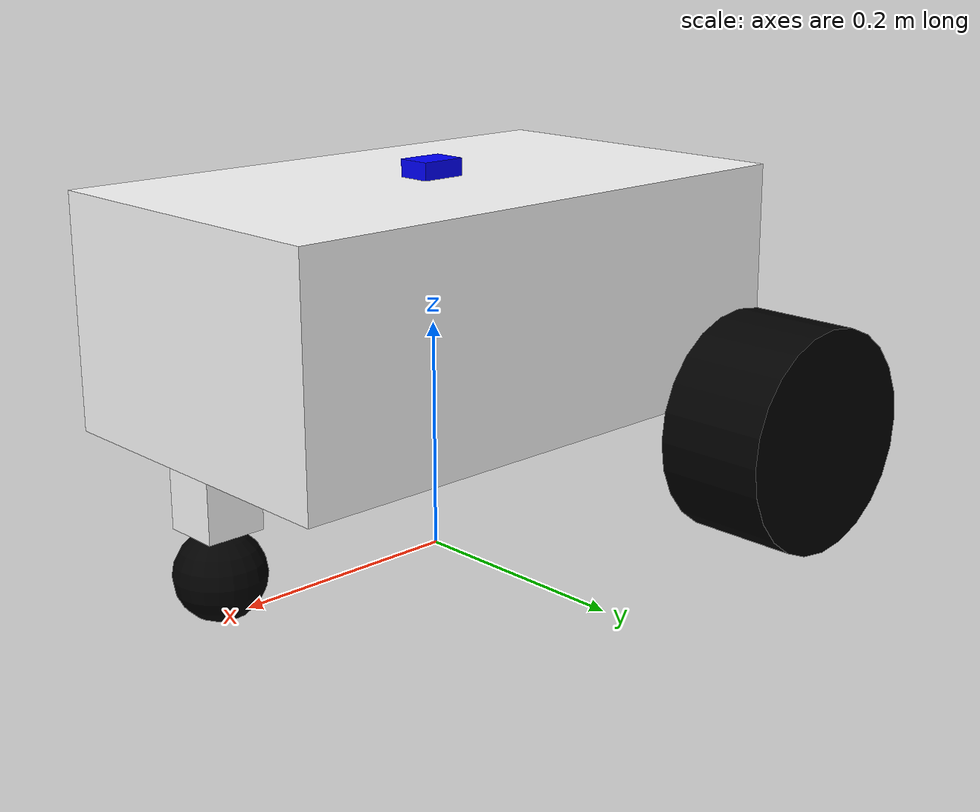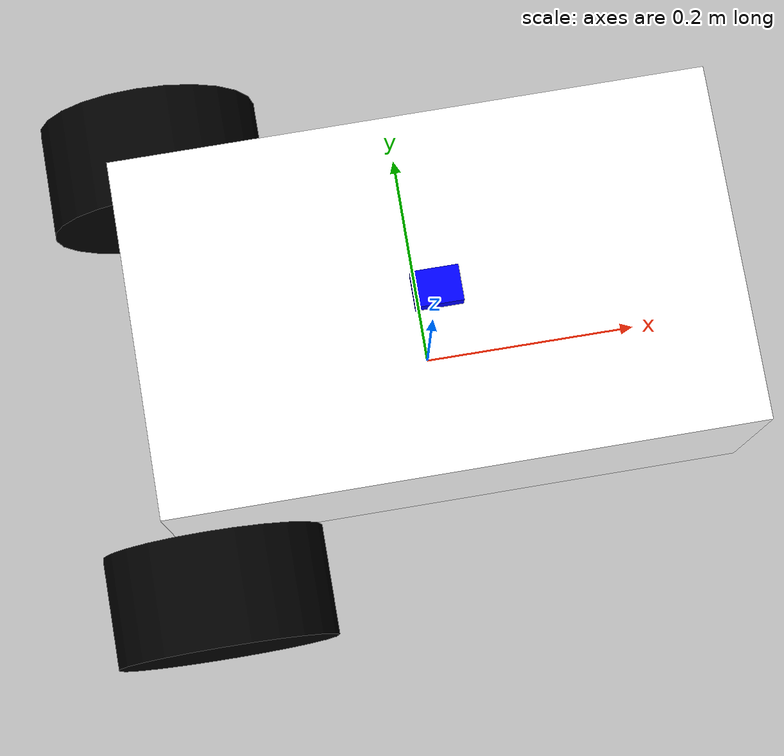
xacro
<?xml version="1.0"?>

<robot xmlns:xacro="http://www.ros.org/wiki/xacro" name="differential_drive_robot">
    <xacro:include filename="properties.xacro"/>
    <xacro:include filename="components.xacro"/>

    <material name="white">
        <color rgba="1 1 1 1"/>
    </material>
    <material name="black">
        <color rgba="0 0 0 1"/>
    </material>
    <material name="blue">
        <color rgba="0 0 1 1"/>
    </material>

    <!-- Dummy Root Link -->
    <link name="base_footprint"/>

    <!-- Base Link -->
    <link name="base_link">
        <visual>
            <geometry>
                <box size="${base_length} ${base_width} ${base_height}"/>
            </geometry>
            <material name="white"/>
        </visual>
        <collision>
            <geometry>
                <box size="${base_length} ${base_width} ${base_height}"/>
            </geometry>
        </collision>
        <inertial>
            <mass value="${base_mass}"/>
            <inertia
                ixx="${base_mass * ((base_width*base_width) + (base_height*base_height)) / 12.0}"
                ixy="0"
                ixz="0"
                iyy="${base_mass * ((base_length*base_length) + (base_height*base_height)) / 12.0}"
                iyz="0"
                izz="${base_mass * ((base_length*base_length) + (base_width*base_width)) / 12.0}"/>
        </inertial>
    </link>

    <joint name="base_footprint_joint" type="fixed">
        <parent link="base_footprint"/>
        <child link="base_link"/>
        <origin xyz="0 0 ${base_link_ground_height}" rpy="0 0 0"/>
    </joint>

    <!-- Wheel Base Links -->
    <xacro:wheel_base_link prefix="right" mass="${wheel_base_mass}"/>
    <xacro:wheel_base_joint prefix="right" parent="base_link" child="right_wheel_base_link" reflect="-1"/>

    <xacro:wheel_base_link prefix="left" mass="${wheel_base_mass}"/>
    <xacro:wheel_base_joint prefix="left" parent="base_link" child="left_wheel_base_link" reflect="1"/>

    <!-- Wheels -->
    <xacro:wheel_link prefix="right" mass="${wheel_mass}"/>
    <xacro:wheel_joint prefix="right" parent="right_wheel_base_link" child="right_wheel_link" reflect="-1"/>

    <xacro:wheel_link prefix="left" mass="${wheel_mass}"/>
    <xacro:wheel_joint prefix="left" parent="left_wheel_base_link" child="left_wheel_link" reflect="1"/>

    <!-- Caster Wheel -->
    <xacro:wheel_base_link prefix="caster" mass="${wheel_base_mass}"/>
    <joint name="caster_wheel_base_joint" type="fixed">
        <parent link="base_link"/>
        <child link="caster_wheel_base_link"/>
        <origin xyz="${(base_length/2) - (wheel_base_length/2)} 0 -${(base_height/2) + (wheel_base_height/2)}" rpy="0 0 0"/>
    </joint>

    <link name="caster_wheel_link">
        <visual>
            <geometry>
                <sphere radius="${caster_wheel_radius}"/>
            </geometry>
            <material name="black"/>
        </visual>
        <collision>
            <geometry>
                <sphere radius="${caster_wheel_radius}"/>
            </geometry>
        </collision>
        <inertial>
            <mass value="${caster_wheel_mass}"/>
            <inertia
                ixx="${(2.0/5.0) * caster_wheel_mass * caster_wheel_radius * caster_wheel_radius}"
                ixy="0"
                ixz="0"
                iyy="${(2.0/5.0) * caster_wheel_mass * caster_wheel_radius * caster_wheel_radius}"
                iyz="0"
                izz="${(2.0/5.0) * caster_wheel_mass * caster_wheel_radius * caster_wheel_radius}"/>
        </inertial>
    </link>
    <joint name="caster_wheel_joint" type="fixed">
        <parent link="caster_wheel_base_link"/>
        <child link="caster_wheel_link"/>
        <origin xyz="0 0 -${(wheel_base_height/2) +caster_wheel_radius}" rpy="0 0 0"/>
    </joint>

    <!-- Give the caster wheel low friction so it can slide -->
    <gazebo reference="caster_wheel_link">
        <mu1>0.01</mu1>
        <mu2>0.01</mu2>
    </gazebo>

    <!-- IMU Sensor -->
    <link name="imu_sensor_housing_link">
        <visual>
            <geometry>
                <box size="${imu_sensor_housing_length} ${imu_sensor_housing_width} ${imu_sensor_housing_height}"/>
            </geometry>
            <material name="blue"/>
        </visual>
        <collision>
            <geometry>
                <box size="${imu_sensor_housing_length} ${imu_sensor_housing_width} ${imu_sensor_housing_height}"/>
            </geometry>
        </collision>
        <inertial>
            <mass value="${imu_sensor_mass}"/>
            <inertia
                ixx="${imu_sensor_mass * ((imu_sensor_housing_width*imu_sensor_housing_width) + (imu_sensor_housing_height*imu_sensor_housing_height)) / 12.0}"
                ixy="0"
                ixz="0"
                iyy="${imu_sensor_mass * ((imu_sensor_housing_length*imu_sensor_housing_length) + (imu_sensor_housing_height*imu_sensor_housing_height)) / 12.0}"
                iyz="0"
                izz="${imu_sensor_mass * ((imu_sensor_housing_length*imu_sensor_housing_length) + (imu_sensor_housing_width*imu_sensor_housing_width)) / 12.0}"/>
        </inertial>
    </link>
    <joint name="imu_sensor_housing_joint" type="fixed">
        <parent link="base_link"/>
        <child link="imu_sensor_housing_link"/>
        <origin xyz="0 0 ${(base_height/2) + (imu_sensor_housing_height/2)}" rpy="0 0 0"/>
    </joint>
    <gazebo reference="imu_sensor_housing_link">
        <sensor name="imu_sensor" type="imu">
            <always_on>1</always_on>
            <update_rate>100</update_rate>
            <visualize>true</visualize>
            <topic>imu</topic>
        </sensor>
    </gazebo>

    <!-- RGB Camera -->
    <link name="camera_link">
        <visual>
            <geometry>
                <box size="${camera_length} ${camera_width} ${camera_height}"/>
            </geometry>
            <material name="blue"/>
        </visual>
        <collision>
            <geometry>
                <box size="${camera_length} ${camera_width} ${camera_height}"/>
            </geometry>
        </collision>
        <inertial>
            <mass value="${camera_mass}"/>
            <inertia
                ixx="${camera_mass * ((camera_width*camera_width) + (camera_height*camera_height)) / 12.0}"
                ixy="0"
                ixz="0"
                iyy="${camera_mass * ((camera_length*camera_length) + (camera_height*camera_height)) / 12.0}"
                iyz="0"
                izz="${camera_mass * ((camera_length*camera_length) + (camera_width*camera_width)) / 12.0}"/>
        </inertial>
    </link>
    <joint name="camera_joint" type="fixed">
        <parent link="base_link"/>
        <child link="camera_link"/>
        <origin xyz="0 0 -${(base_height/2) + (camera_length/2)}" rpy="0 ${pi/2} 0"/>
    </joint>
    <link name="camera_link_optical"/>
    <joint name="camera_optical_joint" type="fixed">
        <parent link="camera_link"/>
        <child link="camera_link_optical"/>
        <origin xyz="0 0 0" rpy="-${pi/2} 0 -${pi/2}"/>
    </joint>
    <gazebo reference="camera_link">
        <sensor name="camera" type="camera">
            <always_on>true</always_on>
            <visualize>true</visualize>
            <update_rate>30</update_rate>
            <topic>camera/image_raw</topic>
            <gz_frame_id>camera_link_optical</gz_frame_id>

            <camera name="camera">
                <horizontal_fov>1.089</horizontal_fov>
                <image>
                    <width>640</width>
                    <height>480</height>
                    <format>R8G8B8</format>
                </image>
                <clip>
                    <near>0.01</near>
                    <far>1.0</far>
                </clip>
            </camera>
        </sensor>

        <light name="camera_light" type="spot">
            <pose>0 0 0 0 ${pi/2} 0</pose>
            <diffuse>1 1 1 1</diffuse>
            <specular>0.1 0.1 0.1 1</specular>
            <attenuation>
                <range>1.0</range>
                <constant>1.0</constant>
                <linear>0.0</linear>
                <quadratic>0.0</quadratic>
            </attenuation>

            <direction>0 0 1</direction>

            <spot>
                <inner_angle>1.089</inner_angle>
                <outer_angle>1.2</outer_angle>
                <falloff>0.5</falloff>
            </spot>
        </light>
    </gazebo>

    <gazebo>
        <!-- Differential Drive System Plugin -->
        <plugin filename="gz-sim-diff-drive-system"
                name="gz::sim::systems::DiffDrive">
        <left_joint>left_wheel_joint</left_joint>
        <right_joint>right_wheel_joint</right_joint>

        <!-- Kinematics -->
        <wheel_separation>${base_width + wheel_length}</wheel_separation>
        <wheel_radius>${wheel_radius}</wheel_radius>

        <!-- Limits -->
        <max_linear_acceleration>1.0</max_linear_acceleration>
        <min_linear_acceleration>-1.0</min_linear_acceleration>
        <max_angular_acceleration>2.0</max_angular_acceleration>
        <min_angular_acceleration>-2.0</min_angular_acceleration>

        <!-- Topics -->
        <topic>cmd_vel</topic>
        <odom_topic>odom</odom_topic>
        <tf_topic>tf</tf_topic>

        <!-- Frames -->
        <frame_id>odom</frame_id>
        <child_frame_id>base_footprint</child_frame_id>
        <odom_publish_frequency>50</odom_publish_frequency>
        </plugin>

        <!-- Joint State Publisher Plugin -->
        <plugin filename="gz-sim-joint-state-publisher-system"
                name="gz::sim::systems::JointStatePublisher">
            <topic>joint_states</topic>
        </plugin>

        <!-- IMU Sensor Plugin -->
        <plugin filename="gz-sim-imu-system"
                name="gz::sim::systems::Imu">
        </plugin>

        <!-- Sensors Plugin (For Camera) -->
        <plugin filename="gz-sim-sensors-system"
                name="gz::sim::systems::Sensors">
            <render_engine>ogre2</render_engine>
        </plugin>
    </gazebo>
</robot>

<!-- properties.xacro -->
<robot xmlns:xacro="http://www.ros.org/wiki/xacro">
    <!-- Base -->
    <xacro:property name="base_length" value="0.5"/>
    <xacro:property name="base_width" value="0.3"/>
    <xacro:property name="base_height" value="0.2"/>
    <xacro:property name="base_mass" value="4.0"/>

    <!-- Wheel Mounts -->
    <xacro:property name="wheel_base_length" value="0.05"/>
    <xacro:property name="wheel_base_width" value="0.05"/>
    <xacro:property name="wheel_base_height" value="0.05"/>
    <xacro:property name="wheel_base_mass" value="0.1"/>

    <!-- Wheels -->
    <xacro:property name="wheel_radius" value="0.1"/>
    <xacro:property name="wheel_length" value="0.1"/>
    <xacro:property name="wheel_mass" value="0.5"/>
    <xacro:property name="wheel_roll" value="${pi/2}"/>

    <!-- Caster Wheel Radius -->
    <xacro:property name="caster_wheel_radius" value="${(wheel_radius - (wheel_base_height/2))/2}"/>
    <xacro:property name="caster_wheel_mass" value="0.1"/>

    <!-- Height of base_link origin above the ground -->
    <xacro:property name="base_link_ground_height" value="${(base_height/2) + (wheel_base_height/2) + wheel_radius}"/>

    <!-- Wheel actuator limits -->
    <xacro:property name="wheel_max_velocity" value="10.0"/>      <!-- rad/s -->
    <xacro:property name="wheel_max_effort" value="1.0"/>

    <!-- IMU Sensor -->
    <xacro:property name="imu_sensor_housing_length" value="0.04"/>
    <xacro:property name="imu_sensor_housing_width" value="0.03"/>
    <xacro:property name="imu_sensor_housing_height" value="0.015"/>
    <xacro:property name="imu_sensor_mass" value="0.02"/>

    <!-- Camera -->
    <xacro:property name="camera_length" value="0.04"/>
    <xacro:property name="camera_width" value="0.03"/>
    <xacro:property name="camera_height" value="0.025"/>
    <xacro:property name="camera_mass" value="0.03"/>
</robot>

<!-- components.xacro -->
<robot xmlns:xacro="http://www.ros.org/wiki/xacro">
    <!-- Wheel base link -->
    <xacro:macro name="wheel_base_link" params="prefix mass">
        <link name="${prefix}_wheel_base_link">
            <visual>
                <geometry>
                    <box size="${wheel_base_length} ${wheel_base_width} ${wheel_base_height}"/>
                </geometry>
                <material name="white"/>
            </visual>
            <collision>
                <geometry>
                    <box size="${wheel_base_length} ${wheel_base_width} ${wheel_base_height}"/>
                </geometry>
            </collision>
            <inertial>
                <mass value="${mass}"/>
                <inertia
                    ixx="${mass * ((wheel_base_width*wheel_base_width) + (wheel_base_height*wheel_base_height)) / 12.0}"
                    ixy="0"
                    ixz="0"
                    iyy="${mass * ((wheel_base_length*wheel_base_length) + (wheel_base_height*wheel_base_height)) / 12.0}"
                    iyz="0"
                    izz="${mass * ((wheel_base_length*wheel_base_length) + (wheel_base_width*wheel_base_width)) / 12.0}"/>
            </inertial>
        </link>
    </xacro:macro>

    <!-- Wheel base joint -->
    <xacro:macro name="wheel_base_joint" params="prefix parent child reflect">
        <joint name="${prefix}_wheel_base_joint" type="fixed">
            <parent link="${parent}"/>
            <child link="${child}"/>
            <origin xyz="-${(base_length/2) - (wheel_base_length/2)} ${reflect*((base_width/2) - (wheel_base_width/2))} -${(base_height/2) + (wheel_base_height/2)}" rpy="0 0 0"/>
        </joint>
    </xacro:macro>

    <!-- Wheel link -->
    <xacro:macro name="wheel_link" params="prefix mass">
        <link name="${prefix}_wheel_link">
            <visual>
                <origin rpy="${wheel_roll} 0 0" xyz="0 0 0"/>
                <geometry>
                    <cylinder radius="${wheel_radius}" length="${wheel_length}"/>
                </geometry>
                <material name="black"/>
            </visual>
            <collision>
                <origin rpy="${wheel_roll} 0 0" xyz="0 0 0"/>
                <geometry>
                    <cylinder radius="${wheel_radius}" length="${wheel_length}"/>
                </geometry>
            </collision>
            <inertial>
                <mass value="${mass}"/>
                <inertia
                    ixx="${mass * ((3*wheel_radius*wheel_radius) + (wheel_length*wheel_length)) / 12.0}"
                    ixy="0"
                    ixz="0"
                    iyy="${mass * (wheel_radius*wheel_radius / 2.0)}"
                    iyz="0"
                    izz="${mass * ((3*wheel_radius*wheel_radius) + (wheel_length*wheel_length)) / 12.0}"/>
            </inertial>
        </link>
    </xacro:macro>

    <!-- Wheel joint -->
    <xacro:macro name="wheel_joint" params="prefix parent child reflect">
        <joint name="${prefix}_wheel_joint" type="continuous">
            <parent link="${parent}"/>
            <child link="${child}"/>
            <axis xyz="0 1 0"/>
            <origin xyz="0 ${reflect * ((wheel_base_width/2) + (wheel_length/2))} 0" rpy="0 0 0"/>
            <limit velocity="${wheel_max_velocity}" effort="${wheel_max_effort}"/>
        </joint>
    </xacro:macro>
</robot>
